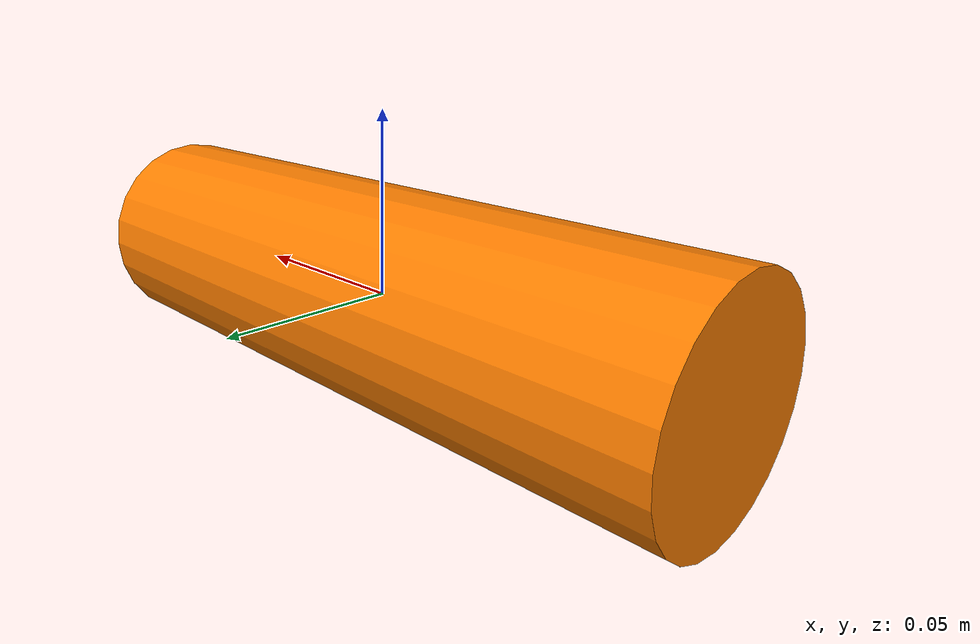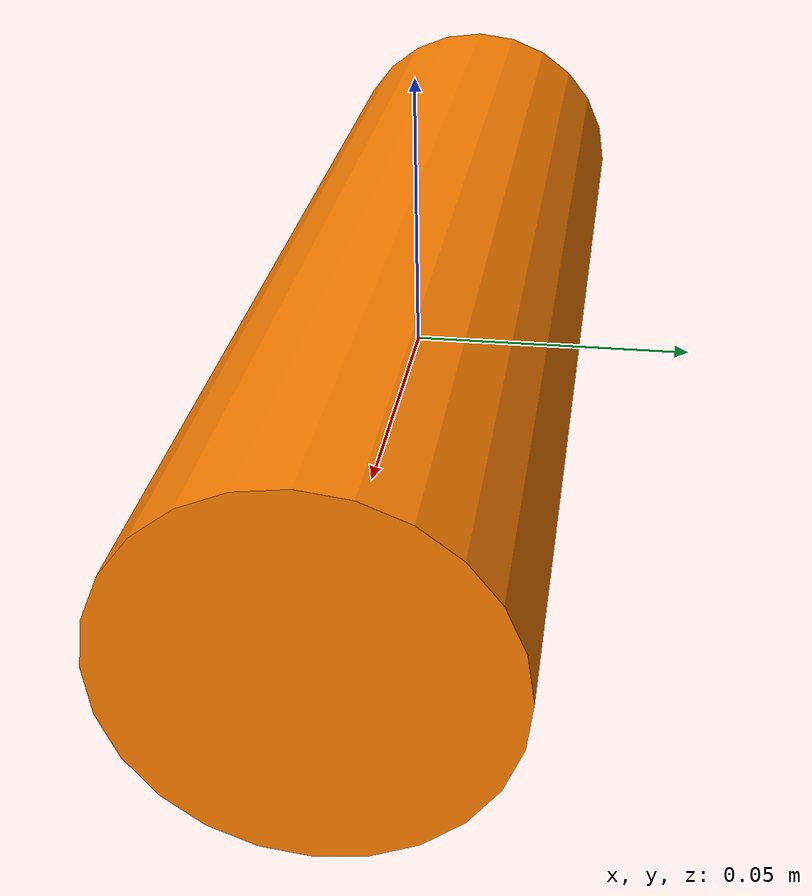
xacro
<?xml version="1.0"?>
<robot xmlns:xacro="http://www.ros.org/wiki/xacro" name="torpedo_model">

  <xacro:arg name="torp_id" default="1"/>

  <link name="torpedo_body">
    <inertial>
      <mass value="0.05"/>
      <origin xyz="0 0 0" rpy="0 1.5708 0"/>
      <inertia ixx="0.001" iyy="0.001" izz="0.001" ixy="0" ixz="0" iyz="0"/>
    </inertial>
    <visual>
      <origin xyz="0 0 0" rpy="0 1.5708 0"/>
      <geometry><cylinder radius="0.03" length="0.2"/></geometry>
      <material name="orange"><color rgba="1.0 0.5 0.0 1.0"/></material>
    </visual>
    <collision>
      <origin xyz="0 0 0" rpy="0 1.5708 0"/>
      <geometry><cylinder radius="0.04" length="0.2"/></geometry>
    </collision>
  </link>

  <link name="propeller_link">
    <inertial>
      <mass value="0.01"/>
      <inertia ixx="0.0001" iyy="0.0001" izz="0.0001" ixy="0" ixz="0" iyz="0"/>
    </inertial>
  </link>

  <joint name="propeller_joint" type="continuous">
    <parent link="torpedo_body"/>
    <child link="propeller_link"/>
    <origin xyz="-0.1 0 0" rpy="0 0 0"/>
    <axis xyz="1 0 0"/>
  </joint>
<gazebo>
    <plugin filename="gz-sim-thruster-system" name="gz::sim::systems::Thruster">
      <joint_name>propeller_joint</joint_name>
      <thrust_coefficient>0.01</thrust_coefficient>
      <fluid_density>1000.0</fluid_density>
      <propeller_diameter>0.05</propeller_diameter>
      <velocity_control>true</velocity_control>
      <topic>/torpedo/cmd_thrust$(arg torp_id)</topic>
    </plugin>
  </gazebo>

</robot>
